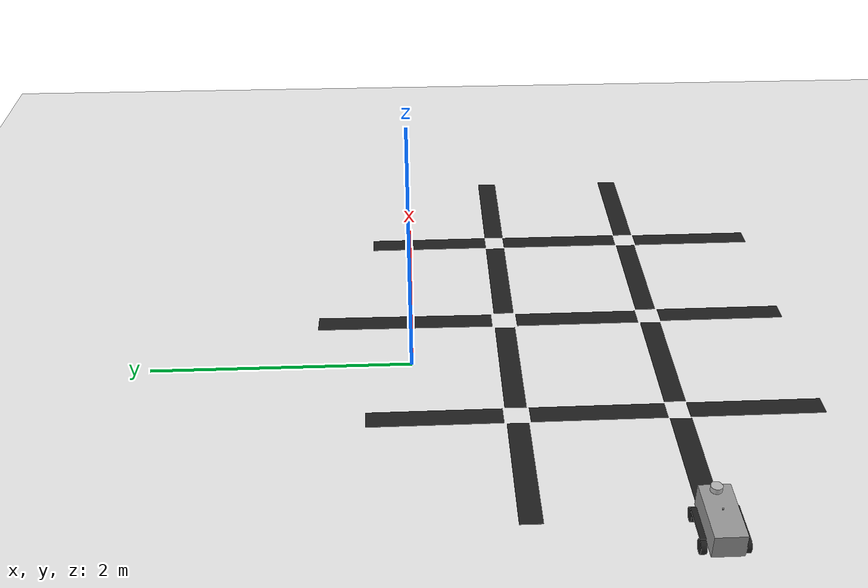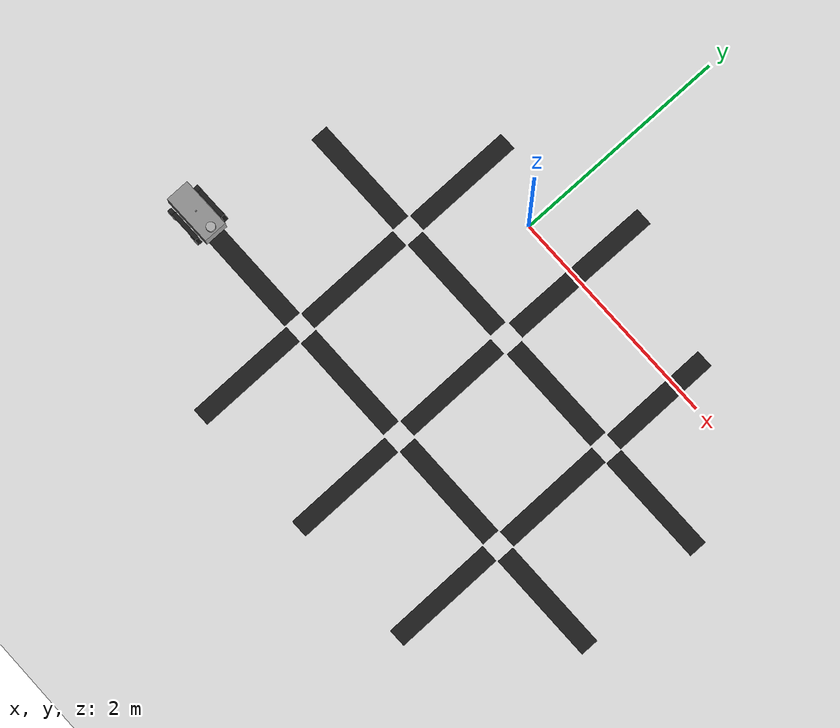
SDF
<sdf version="1.7">
 <world name="default">
  <light name="sun" type="directional">
   <pose>0 0 10 0 -0 0</pose>
   <diffuse>0.8 0.8 0.8 1</diffuse>
   <specular>0.2 0.2 0.2 1</specular>
   <attenuation>
    <range>1000</range>
    <constant>0.9</constant>
    <linear>0.01</linear>
    <quadratic>0.001</quadratic>
   </attenuation>
   <direction>-0.5 0.1 -0.9</direction>
   <spot><inner_angle>0</inner_angle><outer_angle>0</outer_angle><falloff>0</falloff></spot>
  </light>
  <model name="ground_plane">
   <static>1</static>
   <link name="link">
    <collision name="collision">
     <geometry><plane><normal>0 0 1</normal><size>100 100</size></plane></geometry>
     <surface>
      <contact><collide_bitmask>65535</collide_bitmask></contact>
      <friction><ode><mu>100</mu><mu2>50</mu2></ode></friction>
     </surface>
    </collision>
    <visual name="visual">
     <cast_shadows>0</cast_shadows>
     <geometry><plane><normal>0 0 1</normal><size>100 100</size></plane></geometry>
     <material>
      <script><uri>file://media/materials/scripts/gazebo.material</uri><name>Gazebo/White</name></script>
     </material>
    </visual>
   </link>
  </model>
  <model name="tankbot0">
   <pose>-1.86194 -1.93796 0 -3e-06 1e-05 0.00632</pose>
   <frame name="tankbot::__model__" attached_to="tankbot::chassis">
    <pose relative_to="__model__">0 0 0 0 -0 0</pose>
   </frame>
   <link name="tankbot::chassis">
    <pose relative_to="tankbot::__model__">0 0 0.135 0 -0 0</pose>
    <inertial>
     <pose>0.0465 0 0 0 -0 0</pose>
     <mass>2</mass>
     <inertia>
      <ixx>0.0125927</ixx>
      <iyy>0.0408542</iyy>
      <izz>0.0438135</izz>
      <ixy>0</ixy>
      <ixz>0</ixz>
      <iyz>0</iyz>
     </inertia>
    </inertial>
    <collision name="collision"><geometry><box><size>0.465 0.216 0.17</size></box></geometry></collision>
    <visual name="visual">
     <geometry><box><size>0.465 0.216 0.17</size></box></geometry>
     <material>
      <script><uri>file://media/materials/scripts/gazebo.material</uri><name>Gazebo/Grey</name></script>
     </material>
    </visual>
   </link>
   <link name="tankbot::wheel_fl">
    <pose relative_to="tankbot::__model__">0.1395 0.142 0.05 -1.5708 -0.087266 0</pose>
    <inertial>
     <mass>0.25</mass>
     <inertia>
      <ixx>0.000189583</ixx>
      <iyy>0.000189583</iyy>
      <izz>0.0003125</izz>
      <ixy>0</ixy>
      <ixz>0</ixz>
      <iyz>0</iyz>
     </inertia>
    </inertial>
    <collision name="collision">
     <geometry><cylinder><radius>0.05</radius><length>0.04</length></cylinder></geometry>
    </collision>
    <visual name="tankbot::wheel_fl">
     <geometry><cylinder><radius>0.05</radius><length>0.04</length></cylinder></geometry>
     <material>
      <script><uri>file://media/materials/scripts/gazebo.material</uri><name>Gazebo/Black</name></script>
     </material>
    </visual>
   </link>
   <joint name="tankbot::wheel_fl_drive" type="revolute">
    <parent>tankbot::chassis</parent>
    <child>tankbot::wheel_fl</child>
    <axis>
     <xyz>0 0 1</xyz>
     <limit><lower>-1e+16</lower><upper>1e+16</upper></limit>
     <dynamics><spring_reference>0</spring_reference><spring_stiffness>0</spring_stiffness></dynamics>
    </axis>
   </joint>
   <link name="tankbot::chain_l_up">
    <pose relative_to="tankbot::__model__">0.0098 0.14 0.1 0 -0 0</pose>
    <gravity>0</gravity>
    <collision name="collision"><geometry><box><size>0.28 0.04 0.01</size></box></geometry></collision>
    <visual name="visual">
     <geometry><box><size>0.28 0.04 0.01</size></box></geometry>
     <material>
      <script><uri>file://media/materials/scripts/gazebo.material</uri><name>Gazebo/Black</name></script>
     </material>
    </visual>
    <inertial>
     <inertia><ixx>1</ixx><ixy>0</ixy><ixz>0</ixz><iyy>1</iyy><iyz>0</iyz><izz>1</izz></inertia>
     <mass>1</mass>
    </inertial>
   </link>
   <link name="tankbot::chain_r_up">
    <pose relative_to="tankbot::__model__">0.0098 -0.14 0.1 0 -0 0</pose>
    <gravity>0</gravity>
    <collision name="collision"><geometry><box><size>0.28 0.04 0.01</size></box></geometry></collision>
    <visual name="visual">
     <geometry><box><size>0.28 0.04 0.01</size></box></geometry>
     <material>
      <script><uri>file://media/materials/scripts/gazebo.material</uri><name>Gazebo/Black</name></script>
     </material>
    </visual>
    <inertial>
     <inertia><ixx>1</ixx><ixy>0</ixy><ixz>0</ixz><iyy>1</iyy><iyz>0</iyz><izz>1</izz></inertia>
     <mass>1</mass>
    </inertial>
   </link>
   <joint name="tankbot::chain_up_joint" type="revolute">
    <parent>tankbot::chassis</parent>
    <child>tankbot::chain_r_up</child>
   </joint>
   <joint name="tankbot::chain_up_2_joint" type="revolute">
    <parent>tankbot::chassis</parent>
    <child>tankbot::chain_l_up</child>
   </joint>
   <link name="tankbot::wheel_fr">
    <pose relative_to="tankbot::__model__">0.1395 -0.142 0.05 -1.5708 -0.087266 0</pose>
    <inertial>
     <mass>0.25</mass>
     <inertia>
      <ixx>0.000189583</ixx>
      <iyy>0.000189583</iyy>
      <izz>0.0003125</izz>
      <ixy>0</ixy>
      <ixz>0</ixz>
      <iyz>0</iyz>
     </inertia>
    </inertial>
    <collision name="collision">
     <geometry><cylinder><radius>0.05</radius><length>0.04</length></cylinder></geometry>
    </collision>
    <visual name="visual">
     <geometry><cylinder><radius>0.05</radius><length>0.04</length></cylinder></geometry>
     <material>
      <script><uri>file://media/materials/scripts/gazebo.material</uri><name>Gazebo/Black</name></script>
     </material>
    </visual>
   </link>
   <joint name="tankbot::wheel_fr_drive" type="revolute">
    <parent>tankbot::chassis</parent>
    <child>tankbot::wheel_fr</child>
    <axis>
     <xyz>0 0 1</xyz>
     <limit><lower>-1e+16</lower><upper>1e+16</upper></limit>
     <dynamics><spring_reference>0</spring_reference><spring_stiffness>0</spring_stiffness></dynamics>
    </axis>
   </joint>
   <link name="tankbot::wheel_rl">
    <pose relative_to="tankbot::__model__">-0.1395 0.142 0.05 -1.5708 0 0</pose>
    <inertial>
     <mass>0.25</mass>
     <inertia>
      <ixx>0.000189583</ixx>
      <iyy>0.000189583</iyy>
      <izz>0.0003125</izz>
      <ixy>0</ixy>
      <ixz>0</ixz>
      <iyz>0</iyz>
     </inertia>
    </inertial>
    <collision name="collision">
     <geometry><cylinder><radius>0.05</radius><length>0.04</length></cylinder></geometry>
    </collision>
    <visual name="visual">
     <geometry><cylinder><radius>0.05</radius><length>0.04</length></cylinder></geometry>
     <material>
      <script><uri>file://media/materials/scripts/gazebo.material</uri><name>Gazebo/Black</name></script>
     </material>
    </visual>
   </link>
   <joint name="tankbot::wheel_rl_drive" type="revolute">
    <parent>tankbot::chassis</parent>
    <child>tankbot::wheel_rl</child>
    <axis>
     <xyz>0 0 1</xyz>
     <limit><lower>-1e+16</lower><upper>1e+16</upper></limit>
     <dynamics><spring_reference>0</spring_reference><spring_stiffness>0</spring_stiffness></dynamics>
    </axis>
   </joint>
   <link name="tankbot::wheel_rr">
    <pose relative_to="tankbot::__model__">-0.1395 -0.142 0.05 -1.5708 0 0</pose>
    <inertial>
     <mass>0.25</mass>
     <inertia>
      <ixx>0.000189583</ixx>
      <iyy>0.000189583</iyy>
      <izz>0.0003125</izz>
      <ixy>0</ixy>
      <ixz>0</ixz>
      <iyz>0</iyz>
     </inertia>
    </inertial>
    <collision name="collision">
     <geometry><cylinder><radius>0.05</radius><length>0.04</length></cylinder></geometry>
    </collision>
    <visual name="visual">
     <geometry><cylinder><radius>0.05</radius><length>0.04</length></cylinder></geometry>
     <material>
      <script><uri>file://media/materials/scripts/gazebo.material</uri><name>Gazebo/Black</name></script>
     </material>
    </visual>
   </link>
   <joint name="tankbot::wheel_rr_drive" type="revolute">
    <parent>tankbot::chassis</parent>
    <child>tankbot::wheel_rr</child>
    <axis>
     <xyz>0 0 1</xyz>
     <limit><lower>-1e+16</lower><upper>1e+16</upper></limit>
     <dynamics><spring_reference>0</spring_reference><spring_stiffness>0</spring_stiffness></dynamics>
    </axis>
   </joint>
   <frame name="tankbot::ultrasonic_sensor::__model__" attached_to="tankbot::ultrasonic_sensor::link">
    <pose relative_to="tankbot::__model__">0.18 0 0.24 0 -0 0</pose>
   </frame>
   <link name="tankbot::ultrasonic_sensor::link">
    <inertial>
     <mass>0.1</mass>
     <inertia><ixx>1</ixx><ixy>0</ixy><ixz>0</ixz><iyy>1</iyy><iyz>0</iyz><izz>1</izz></inertia>
    </inertial>
    <visual name="visual">
     <geometry><cylinder><radius>0.04</radius><length>0.04</length></cylinder></geometry>
    </visual>
    <collision name="collision-base">
     <pose>0 0 -0.0145 0 -0 0</pose>
     <geometry><box><size>0.05 0.05 0.041</size></box></geometry>
    </collision>
    <collision name="collision-top">
     <pose>0 0 0.0205 0 -0 0</pose>
     <geometry><cylinder><radius>0.021</radius><length>0.029</length></cylinder></geometry>
    </collision>
    <sensor name="sonar" type="sonar">
     <pose>0.04 0 0 0 1.5 3.14</pose>
     <sonar><min>0</min><max>3</max><radius>0.3</radius></sonar>
     <plugin name="sonar" filename="libSonarPlugin.so"/>
     <always_on>1</always_on>
     <update_rate>30</update_rate>
     <visualize>1</visualize>
    </sensor>
    <pose relative_to="tankbot::ultrasonic_sensor::__model__">0 0 0 0 -0 0</pose>
   </link>
   <joint name="tankbot::sonar_joint" type="fixed">
    <child>tankbot::ultrasonic_sensor::link</child>
    <parent>tankbot::chassis</parent>
   </joint>
   <frame name="tankbot::camera_sensor::__model__" attached_to="tankbot::camera_sensor::link">
    <pose relative_to="tankbot::__model__">0.2 0 0.04 0 1.57 0</pose>
   </frame>
   <link name="tankbot::camera_sensor::link">
    <inertial>
     <mass>0.1</mass>
     <inertia><ixx>1</ixx><ixy>0</ixy><ixz>0</ixz><iyy>1</iyy><iyz>0</iyz><izz>1</izz></inertia>
    </inertial>
    <visual name="visual">
     <geometry><box><size>0.01 0.07 0.04</size></box></geometry>
     <material>
      <script><uri>file://media/materials/scripts/gazebo.material</uri><name>Gazebo/Red</name></script>
     </material>
    </visual>
    <collision name="collision">
     <pose>0 0 -0.0145 0 -0 0</pose>
     <geometry><box><size>0.01 0.07 0.04</size></box></geometry>
    </collision>
    <sensor name="camera" type="camera">
     <camera>
      <horizontal_fov>1.39626</horizontal_fov>
      <image><width>2</width><height>2</height></image>
      <clip><near>0.02</near><far>300</far></clip>
     </camera>
     <always_on>1</always_on>
     <update_rate>10</update_rate>
     <visualize>1</visualize>
     <plugin name="camera_controller" filename="libCameraPlugin.so"/>
    </sensor>
    <pose relative_to="tankbot::camera_sensor::__model__">0 0 0 0 -0 0</pose>
   </link>
   <frame name="tankbot::microphone_sensor::__model__" attached_to="tankbot::microphone_sensor::link">
    <pose relative_to="tankbot::__model__">0 0 0.23 0 -0 0</pose>
   </frame>
   <link name="tankbot::microphone_sensor::link">
    <inertial>
     <mass>0.1</mass>
     <inertia><ixx>1</ixx><ixy>0</ixy><ixz>0</ixz><iyy>1</iyy><iyz>0</iyz><izz>1</izz></inertia>
    </inertial>
    <visual name="visual">
     <geometry><box><size>0.01 0.01 0.01</size></box></geometry>
     <material>
      <script><uri>file://media/materials/scripts/gazebo.material</uri><name>Gazebo/Grey</name></script>
     </material>
    </visual>
    <collision name="collision"><geometry><box><size>0.01 0.01 0.01</size></box></geometry></collision>
    <pose relative_to="tankbot::microphone_sensor::__model__">0 0 0 0 -0 0</pose>
   </link>
   <plugin name="microphone_controller" filename="libmicrophone_control_plugin.so"/>
   <joint name="tankbot::camera_joint" type="fixed">
    <child>tankbot::camera_sensor::link</child>
    <parent>tankbot::chassis</parent>
   </joint>
   <plugin name="tankbot_control" filename="libtank_control_plugin.so"/>
   <plugin name="tankbot_control" filename="libtank_control_plugin.so"/>
  </model>
  <gravity>0 0 -9.8</gravity>
  <magnetic_field>6e-06 2.3e-05 -4.2e-05</magnetic_field>
  <atmosphere type="adiabatic"/>
  <physics type="ode">
   <max_step_size>0.001</max_step_size>
   <real_time_factor>1</real_time_factor>
   <real_time_update_rate>1000</real_time_update_rate>
  </physics>
  <scene><ambient>0.4 0.4 0.4 1</ambient><background>0.7 0.7 0.7 1</background><shadows>1</shadows></scene>
  <spherical_coordinates>
   <surface_model>EARTH_WGS84</surface_model>
   <latitude_deg>0</latitude_deg>
   <longitude_deg>0</longitude_deg>
   <elevation>0</elevation>
   <heading_deg>0</heading_deg>
  </spherical_coordinates>
  <model name="unit_box_clone_0_clone_clone_0">
   <link name="link">
    <inertial>
     <mass>1</mass>
     <inertia>
      <ixx>0.166667</ixx>
      <ixy>0</ixy>
      <ixz>0</ixz>
      <iyy>0.166667</iyy>
      <iyz>0</iyz>
      <izz>0.166667</izz>
     </inertia>
    </inertial>
    <visual name="visual">
     <geometry><box><size>1 0.160776 0.000937</size></box></geometry>
     <material>
      <script><name>Gazebo/Black</name><uri>file://media/materials/scripts/gazebo.material</uri></script>
      <shader type="pixel"><normal_map>__default__</normal_map></shader>
      <ambient>0 0 0 1</ambient>
      <diffuse>0 0 0 1</diffuse>
      <specular>0.1 0.1 0.1 1</specular>
      <emissive>0 0 0 1</emissive>
     </material>
    </visual>
    <collision name="collision">
     <geometry><box><size>1 0.160776 0.000937</size></box></geometry>
     <surface>
      <friction>
       <ode><mu>1</mu><mu2>1</mu2><fdir1>0 0 0</fdir1><slip1>0</slip1><slip2>0</slip2></ode>
       <torsional>
        <coefficient>1</coefficient>
        <patch_radius>0</patch_radius>
        <surface_radius>0</surface_radius>
        <use_patch_radius>1</use_patch_radius>
        <ode><slip>0</slip></ode>
       </torsional>
      </friction>
      <bounce><restitution_coefficient>0</restitution_coefficient><threshold>1e+06</threshold></bounce>
      <contact>
       <collide_without_contact>0</collide_without_contact>
       <collide_without_contact_bitmask>1</collide_without_contact_bitmask>
       <collide_bitmask>1</collide_bitmask>
       <ode>
        <soft_cfm>0</soft_cfm>
        <soft_erp>0.2</soft_erp>
        <kp>1e+13</kp>
        <kd>1</kd>
        <max_vel>0.01</max_vel>
        <min_depth>0</min_depth>
       </ode>
       <bullet>
        <split_impulse>1</split_impulse>
        <split_impulse_penetration_threshold>-0.01</split_impulse_penetration_threshold>
        <soft_cfm>0</soft_cfm>
        <soft_erp>0.2</soft_erp>
        <kp>1e+13</kp>
        <kd>1</kd>
       </bullet>
      </contact>
     </surface>
    </collision>
   </link>
   <static>0</static>
   <pose>-0.04529 -0.750121 0.000469 0 0 -3.7e-05</pose>
  </model>
  <model name="unit_box_clone_0_clone_clone_clone_clone_clone_clone_clone_0_clone">
   <link name="link">
    <inertial>
     <mass>1</mass>
     <inertia>
      <ixx>0.166667</ixx>
      <ixy>0</ixy>
      <ixz>0</ixz>
      <iyy>0.166667</iyy>
      <iyz>0</iyz>
      <izz>0.166667</izz>
     </inertia>
    </inertial>
    <visual name="visual">
     <geometry><box><size>1.3997 0.161571 0.000937</size></box></geometry>
     <material>
      <script><name>Gazebo/Black</name><uri>file://media/materials/scripts/gazebo.material</uri></script>
      <shader type="pixel"><normal_map>__default__</normal_map></shader>
      <ambient>0 0 0 1</ambient>
      <diffuse>0 0 0 1</diffuse>
      <specular>0.1 0.1 0.1 1</specular>
      <emissive>0 0 0 1</emissive>
     </material>
    </visual>
    <collision name="collision">
     <geometry><box><size>1.3997 0.161571 0.000937</size></box></geometry>
     <surface>
      <friction>
       <ode><mu>1</mu><mu2>1</mu2><fdir1>0 0 0</fdir1><slip1>0</slip1><slip2>0</slip2></ode>
       <torsional>
        <coefficient>1</coefficient>
        <patch_radius>0</patch_radius>
        <surface_radius>0</surface_radius>
        <use_patch_radius>1</use_patch_radius>
        <ode><slip>0</slip></ode>
       </torsional>
      </friction>
      <bounce><restitution_coefficient>0</restitution_coefficient><threshold>1e+06</threshold></bounce>
      <contact>
       <collide_without_contact>0</collide_without_contact>
       <collide_without_contact_bitmask>1</collide_without_contact_bitmask>
       <collide_bitmask>1</collide_bitmask>
       <ode>
        <soft_cfm>0</soft_cfm>
        <soft_erp>0.2</soft_erp>
        <kp>1e+13</kp>
        <kd>1</kd>
        <max_vel>0.01</max_vel>
        <min_depth>0</min_depth>
       </ode>
       <bullet>
        <split_impulse>1</split_impulse>
        <split_impulse_penetration_threshold>-0.01</split_impulse_penetration_threshold>
        <soft_cfm>0</soft_cfm>
        <soft_erp>0.2</soft_erp>
        <kp>1e+13</kp>
        <kd>1</kd>
       </bullet>
      </contact>
     </surface>
    </collision>
   </link>
   <static>0</static>
   <pose>0.561441 0.050522 0.000455 0 1.9e-05 -1.57395</pose>
  </model>
  <model name="unit_box_clone_0_clone_clone_0_clone">
   <link name="link">
    <inertial>
     <mass>1</mass>
     <inertia>
      <ixx>0.166667</ixx>
      <ixy>0</ixy>
      <ixz>0</ixz>
      <iyy>0.166667</iyy>
      <iyz>0</iyz>
      <izz>0.166667</izz>
     </inertia>
    </inertial>
    <visual name="visual">
     <geometry><box><size>1 0.160776 0.000937</size></box></geometry>
     <material>
      <script><name>Gazebo/Black</name><uri>file://media/materials/scripts/gazebo.material</uri></script>
      <shader type="pixel"><normal_map>__default__</normal_map></shader>
      <ambient>0 0 0 1</ambient>
      <diffuse>0 0 0 1</diffuse>
      <specular>0.1 0.1 0.1 1</specular>
      <emissive>0 0 0 1</emissive>
     </material>
    </visual>
    <collision name="collision">
     <geometry><box><size>1 0.160776 0.000937</size></box></geometry>
     <surface>
      <friction>
       <ode><mu>1</mu><mu2>1</mu2><fdir1>0 0 0</fdir1><slip1>0</slip1><slip2>0</slip2></ode>
       <torsional>
        <coefficient>1</coefficient>
        <patch_radius>0</patch_radius>
        <surface_radius>0</surface_radius>
        <use_patch_radius>1</use_patch_radius>
        <ode><slip>0</slip></ode>
       </torsional>
      </friction>
      <bounce><restitution_coefficient>0</restitution_coefficient><threshold>1e+06</threshold></bounce>
      <contact>
       <collide_without_contact>0</collide_without_contact>
       <collide_without_contact_bitmask>1</collide_without_contact_bitmask>
       <collide_bitmask>1</collide_bitmask>
       <ode>
        <soft_cfm>0</soft_cfm>
        <soft_erp>0.2</soft_erp>
        <kp>1e+13</kp>
        <kd>1</kd>
        <max_vel>0.01</max_vel>
        <min_depth>0</min_depth>
       </ode>
       <bullet>
        <split_impulse>1</split_impulse>
        <split_impulse_penetration_threshold>-0.01</split_impulse_penetration_threshold>
        <soft_cfm>0</soft_cfm>
        <soft_erp>0.2</soft_erp>
        <kp>1e+13</kp>
        <kd>1</kd>
       </bullet>
      </contact>
     </surface>
    </collision>
   </link>
   <static>0</static>
   <pose>1.1591 -0.754913 0.000469 -0 -0 -3.7e-05</pose>
  </model>
  <model name="unit_box_clone_0_clone_clone_0_clone_clone">
   <link name="link">
    <inertial>
     <mass>1</mass>
     <inertia>
      <ixx>0.166667</ixx>
      <ixy>0</ixy>
      <ixz>0</ixz>
      <iyy>0.166667</iyy>
      <iyz>0</iyz>
      <izz>0.166667</izz>
     </inertia>
    </inertial>
    <visual name="visual">
     <geometry><box><size>0.983697 0.160776 0.000937</size></box></geometry>
     <material>
      <script><name>Gazebo/Black</name><uri>file://media/materials/scripts/gazebo.material</uri></script>
      <shader type="pixel"><normal_map>__default__</normal_map></shader>
      <ambient>0 0 0 1</ambient>
      <diffuse>0 0 0 1</diffuse>
      <specular>0.1 0.1 0.1 1</specular>
      <emissive>0 0 0 1</emissive>
     </material>
    </visual>
    <collision name="collision">
     <geometry><box><size>0.983697 0.160776 0.000937</size></box></geometry>
     <surface>
      <friction>
       <ode><mu>1</mu><mu2>1</mu2><fdir1>0 0 0</fdir1><slip1>0</slip1><slip2>0</slip2></ode>
       <torsional>
        <coefficient>1</coefficient>
        <patch_radius>0</patch_radius>
        <surface_radius>0</surface_radius>
        <use_patch_radius>1</use_patch_radius>
        <ode><slip>0</slip></ode>
       </torsional>
      </friction>
      <bounce><restitution_coefficient>0</restitution_coefficient><threshold>1e+06</threshold></bounce>
      <contact>
       <collide_without_contact>0</collide_without_contact>
       <collide_without_contact_bitmask>1</collide_without_contact_bitmask>
       <collide_bitmask>1</collide_bitmask>
       <ode>
        <soft_cfm>0</soft_cfm>
        <soft_erp>0.2</soft_erp>
        <kp>1e+13</kp>
        <kd>1</kd>
        <max_vel>0.01</max_vel>
        <min_depth>0</min_depth>
       </ode>
       <bullet>
        <split_impulse>1</split_impulse>
        <split_impulse_penetration_threshold>-0.01</split_impulse_penetration_threshold>
        <soft_cfm>0</soft_cfm>
        <soft_erp>0.2</soft_erp>
        <kp>1e+13</kp>
        <kd>1</kd>
       </bullet>
      </contact>
     </surface>
    </collision>
   </link>
   <static>0</static>
   <pose>0.563533 -1.34232 0.000463 -2e-06 -1.2e-05 -1.56214</pose>
  </model>
  <model name="unit_box_clone_0_clone_clone_0_clone_clone_clone">
   <link name="link">
    <inertial>
     <mass>1</mass>
     <inertia>
      <ixx>0.166667</ixx>
      <ixy>0</ixy>
      <ixz>0</ixz>
      <iyy>0.166667</iyy>
      <iyz>0</iyz>
      <izz>0.166667</izz>
     </inertia>
    </inertial>
    <visual name="visual">
     <geometry><box><size>1 0.160776 0.000937</size></box></geometry>
     <material>
      <script><name>Gazebo/Black</name><uri>file://media/materials/scripts/gazebo.material</uri></script>
      <shader type="pixel"><normal_map>__default__</normal_map></shader>
      <ambient>0 0 0 1</ambient>
      <diffuse>0 0 0 1</diffuse>
      <specular>0.1 0.1 0.1 1</specular>
      <emissive>0 0 0 1</emissive>
     </material>
    </visual>
    <collision name="collision">
     <geometry><box><size>1 0.160776 0.000937</size></box></geometry>
     <surface>
      <friction>
       <ode><mu>1</mu><mu2>1</mu2><fdir1>0 0 0</fdir1><slip1>0</slip1><slip2>0</slip2></ode>
       <torsional>
        <coefficient>1</coefficient>
        <patch_radius>0</patch_radius>
        <surface_radius>0</surface_radius>
        <use_patch_radius>1</use_patch_radius>
        <ode><slip>0</slip></ode>
       </torsional>
      </friction>
      <bounce><restitution_coefficient>0</restitution_coefficient><threshold>1e+06</threshold></bounce>
      <contact>
       <collide_without_contact>0</collide_without_contact>
       <collide_without_contact_bitmask>1</collide_without_contact_bitmask>
       <collide_bitmask>1</collide_bitmask>
       <ode>
        <soft_cfm>0</soft_cfm>
        <soft_erp>0.2</soft_erp>
        <kp>1e+13</kp>
        <kd>1</kd>
        <max_vel>0.01</max_vel>
        <min_depth>0</min_depth>
       </ode>
       <bullet>
        <split_impulse>1</split_impulse>
        <split_impulse_penetration_threshold>-0.01</split_impulse_penetration_threshold>
        <soft_cfm>0</soft_cfm>
        <soft_erp>0.2</soft_erp>
        <kp>1e+13</kp>
        <kd>1</kd>
       </bullet>
      </contact>
     </surface>
    </collision>
   </link>
   <static>0</static>
   <pose>1.76194 -1.33679 0.000466 0 5e-06 -1.56226</pose>
  </model>
  <model name="unit_box_clone_0_clone_clone_0_clone_clone_0">
   <link name="link">
    <inertial>
     <mass>1</mass>
     <inertia>
      <ixx>0.166667</ixx>
      <ixy>0</ixy>
      <ixz>0</ixz>
      <iyy>0.166667</iyy>
      <iyz>0</iyz>
      <izz>0.166667</izz>
     </inertia>
    </inertial>
    <visual name="visual">
     <geometry><box><size>1 0.160776 0.000937</size></box></geometry>
     <material>
      <script><name>Gazebo/Black</name><uri>file://media/materials/scripts/gazebo.material</uri></script>
      <shader type="pixel"><normal_map>__default__</normal_map></shader>
      <ambient>0 0 0 1</ambient>
      <diffuse>0 0 0 1</diffuse>
      <specular>0.1 0.1 0.1 1</specular>
      <emissive>0 0 0 1</emissive>
     </material>
    </visual>
    <collision name="collision">
     <geometry><box><size>1 0.160776 0.000937</size></box></geometry>
     <surface>
      <friction>
       <ode><mu>1</mu><mu2>1</mu2><fdir1>0 0 0</fdir1><slip1>0</slip1><slip2>0</slip2></ode>
       <torsional>
        <coefficient>1</coefficient>
        <patch_radius>0</patch_radius>
        <surface_radius>0</surface_radius>
        <use_patch_radius>1</use_patch_radius>
        <ode><slip>0</slip></ode>
       </torsional>
      </friction>
      <bounce><restitution_coefficient>0</restitution_coefficient><threshold>1e+06</threshold></bounce>
      <contact>
       <collide_without_contact>0</collide_without_contact>
       <collide_without_contact_bitmask>1</collide_without_contact_bitmask>
       <collide_bitmask>1</collide_bitmask>
       <ode>
        <soft_cfm>0</soft_cfm>
        <soft_erp>0.2</soft_erp>
        <kp>1e+13</kp>
        <kd>1</kd>
        <max_vel>0.01</max_vel>
        <min_depth>0</min_depth>
       </ode>
       <bullet>
        <split_impulse>1</split_impulse>
        <split_impulse_penetration_threshold>-0.01</split_impulse_penetration_threshold>
        <soft_cfm>0</soft_cfm>
        <soft_erp>0.2</soft_erp>
        <kp>1e+13</kp>
        <kd>1</kd>
       </bullet>
      </contact>
     </surface>
    </collision>
   </link>
   <static>0</static>
   <pose>2.3499 -0.756127 0.000466 0 -5e-06 -3.4e-05</pose>
  </model>
  <model name="unit_box_clone_0_clone_clone_0_clone_clone_clone_0">
   <link name="link">
    <inertial>
     <mass>1</mass>
     <inertia>
      <ixx>0.166667</ixx>
      <ixy>0</ixy>
      <ixz>0</ixz>
      <iyy>0.166667</iyy>
      <iyz>0</iyz>
      <izz>0.166667</izz>
     </inertia>
    </inertial>
    <visual name="visual">
     <geometry><box><size>1 0.160776 0.000937</size></box></geometry>
     <material>
      <script><name>Gazebo/Black</name><uri>file://media/materials/scripts/gazebo.material</uri></script>
      <shader type="pixel"><normal_map>__default__</normal_map></shader>
      <ambient>0 0 0 1</ambient>
      <diffuse>0 0 0 1</diffuse>
      <specular>0.1 0.1 0.1 1</specular>
      <emissive>0 0 0 1</emissive>
     </material>
    </visual>
    <collision name="collision">
     <geometry><box><size>1 0.160776 0.000937</size></box></geometry>
     <surface>
      <friction>
       <ode><mu>1</mu><mu2>1</mu2><fdir1>0 0 0</fdir1><slip1>0</slip1><slip2>0</slip2></ode>
       <torsional>
        <coefficient>1</coefficient>
        <patch_radius>0</patch_radius>
        <surface_radius>0</surface_radius>
        <use_patch_radius>1</use_patch_radius>
        <ode><slip>0</slip></ode>
       </torsional>
      </friction>
      <bounce><restitution_coefficient>0</restitution_coefficient><threshold>1e+06</threshold></bounce>
      <contact>
       <collide_without_contact>0</collide_without_contact>
       <collide_without_contact_bitmask>1</collide_without_contact_bitmask>
       <collide_bitmask>1</collide_bitmask>
       <ode>
        <soft_cfm>0</soft_cfm>
        <soft_erp>0.2</soft_erp>
        <kp>1e+13</kp>
        <kd>1</kd>
        <max_vel>0.01</max_vel>
        <min_depth>0</min_depth>
       </ode>
       <bullet>
        <split_impulse>1</split_impulse>
        <split_impulse_penetration_threshold>-0.01</split_impulse_penetration_threshold>
        <soft_cfm>0</soft_cfm>
        <soft_erp>0.2</soft_erp>
        <kp>1e+13</kp>
        <kd>1</kd>
       </bullet>
      </contact>
     </surface>
    </collision>
   </link>
   <static>0</static>
   <pose>1.75703 -0.173188 0.000466 0 -5e-06 -1.56216</pose>
  </model>
  <model name="unit_box_clone_0_clone_clone_0_clone_0">
   <link name="link">
    <inertial>
     <mass>1</mass>
     <inertia>
      <ixx>0.166667</ixx>
      <ixy>0</ixy>
      <ixz>0</ixz>
      <iyy>0.166667</iyy>
      <iyz>0</iyz>
      <izz>0.166667</izz>
     </inertia>
    </inertial>
    <visual name="visual">
     <geometry><box><size>1 0.160776 0.000937</size></box></geometry>
     <material>
      <script><name>Gazebo/Black</name><uri>file://media/materials/scripts/gazebo.material</uri></script>
      <shader type="pixel"><normal_map>__default__</normal_map></shader>
      <ambient>0 0 0 1</ambient>
      <diffuse>0 0 0 1</diffuse>
      <specular>0.1 0.1 0.1 1</specular>
      <emissive>0 0 0 1</emissive>
     </material>
    </visual>
    <collision name="collision">
     <geometry><box><size>1 0.160776 0.000937</size></box></geometry>
     <surface>
      <friction>
       <ode><mu>1</mu><mu2>1</mu2><fdir1>0 0 0</fdir1><slip1>0</slip1><slip2>0</slip2></ode>
       <torsional>
        <coefficient>1</coefficient>
        <patch_radius>0</patch_radius>
        <surface_radius>0</surface_radius>
        <use_patch_radius>1</use_patch_radius>
        <ode><slip>0</slip></ode>
       </torsional>
      </friction>
      <bounce><restitution_coefficient>0</restitution_coefficient><threshold>1e+06</threshold></bounce>
      <contact>
       <collide_without_contact>0</collide_without_contact>
       <collide_without_contact_bitmask>1</collide_without_contact_bitmask>
       <collide_bitmask>1</collide_bitmask>
       <ode>
        <soft_cfm>0</soft_cfm>
        <soft_erp>0.2</soft_erp>
        <kp>1e+13</kp>
        <kd>1</kd>
        <max_vel>0.01</max_vel>
        <min_depth>0</min_depth>
       </ode>
       <bullet>
        <split_impulse>1</split_impulse>
        <split_impulse_penetration_threshold>-0.01</split_impulse_penetration_threshold>
        <soft_cfm>0</soft_cfm>
        <soft_erp>0.2</soft_erp>
        <kp>1e+13</kp>
        <kd>1</kd>
       </bullet>
      </contact>
     </surface>
    </collision>
   </link>
   <static>0</static>
   <pose>-1.22071 -0.751985 0.000469 0 0 -3.7e-05</pose>
  </model>
  <model name="unit_box_clone_0_clone_clone_0_clone_clone_clone_1">
   <link name="link">
    <inertial>
     <mass>1</mass>
     <inertia>
      <ixx>0.166667</ixx>
      <ixy>0</ixy>
      <ixz>0</ixz>
      <iyy>0.166667</iyy>
      <iyz>0</iyz>
      <izz>0.166667</izz>
     </inertia>
    </inertial>
    <visual name="visual">
     <geometry><box><size>1 0.160776 0.000937</size></box></geometry>
     <material>
      <script><name>Gazebo/Black</name><uri>file://media/materials/scripts/gazebo.material</uri></script>
      <shader type="pixel"><normal_map>__default__</normal_map></shader>
      <ambient>0 0 0 1</ambient>
      <diffuse>0 0 0 1</diffuse>
      <specular>0.1 0.1 0.1 1</specular>
      <emissive>0 0 0 1</emissive>
     </material>
    </visual>
    <collision name="collision">
     <geometry><box><size>1 0.160776 0.000937</size></box></geometry>
     <surface>
      <friction>
       <ode><mu>1</mu><mu2>1</mu2><fdir1>0 0 0</fdir1><slip1>0</slip1><slip2>0</slip2></ode>
       <torsional>
        <coefficient>1</coefficient>
        <patch_radius>0</patch_radius>
        <surface_radius>0</surface_radius>
        <use_patch_radius>1</use_patch_radius>
        <ode><slip>0</slip></ode>
       </torsional>
      </friction>
      <bounce><restitution_coefficient>0</restitution_coefficient><threshold>1e+06</threshold></bounce>
      <contact>
       <collide_without_contact>0</collide_without_contact>
       <collide_without_contact_bitmask>1</collide_without_contact_bitmask>
       <collide_bitmask>1</collide_bitmask>
       <ode>
        <soft_cfm>0</soft_cfm>
        <soft_erp>0.2</soft_erp>
        <kp>1e+13</kp>
        <kd>1</kd>
        <max_vel>0.01</max_vel>
        <min_depth>0</min_depth>
       </ode>
       <bullet>
        <split_impulse>1</split_impulse>
        <split_impulse_penetration_threshold>-0.01</split_impulse_penetration_threshold>
        <soft_cfm>0</soft_cfm>
        <soft_erp>0.2</soft_erp>
        <kp>1e+13</kp>
        <kd>1</kd>
       </bullet>
      </contact>
     </surface>
    </collision>
   </link>
   <static>0</static>
   <pose>-0.626559 -1.34724 0.000466 0 -5e-06 -1.56215</pose>
  </model>
  <model name="unit_box_clone_0_clone_clone_0_clone_clone_clone_0_clone">
   <link name="link">
    <inertial>
     <mass>1</mass>
     <inertia>
      <ixx>0.166667</ixx>
      <ixy>0</ixy>
      <ixz>0</ixz>
      <iyy>0.166667</iyy>
      <iyz>0</iyz>
      <izz>0.166667</izz>
     </inertia>
    </inertial>
    <visual name="visual">
     <geometry><box><size>1 0.160776 0.000937</size></box></geometry>
     <material>
      <script><name>Gazebo/Black</name><uri>file://media/materials/scripts/gazebo.material</uri></script>
      <shader type="pixel"><normal_map>__default__</normal_map></shader>
      <ambient>0 0 0 1</ambient>
      <diffuse>0 0 0 1</diffuse>
      <specular>0.1 0.1 0.1 1</specular>
      <emissive>0 0 0 1</emissive>
     </material>
    </visual>
    <collision name="collision">
     <geometry><box><size>1 0.160776 0.000937</size></box></geometry>
     <surface>
      <friction>
       <ode><mu>1</mu><mu2>1</mu2><fdir1>0 0 0</fdir1><slip1>0</slip1><slip2>0</slip2></ode>
       <torsional>
        <coefficient>1</coefficient>
        <patch_radius>0</patch_radius>
        <surface_radius>0</surface_radius>
        <use_patch_radius>1</use_patch_radius>
        <ode><slip>0</slip></ode>
       </torsional>
      </friction>
      <bounce><restitution_coefficient>0</restitution_coefficient><threshold>1e+06</threshold></bounce>
      <contact>
       <collide_without_contact>0</collide_without_contact>
       <collide_without_contact_bitmask>1</collide_without_contact_bitmask>
       <collide_bitmask>1</collide_bitmask>
       <ode>
        <soft_cfm>0</soft_cfm>
        <soft_erp>0.2</soft_erp>
        <kp>1e+13</kp>
        <kd>1</kd>
        <max_vel>0.01</max_vel>
        <min_depth>0</min_depth>
       </ode>
       <bullet>
        <split_impulse>1</split_impulse>
        <split_impulse_penetration_threshold>-0.01</split_impulse_penetration_threshold>
        <soft_cfm>0</soft_cfm>
        <soft_erp>0.2</soft_erp>
        <kp>1e+13</kp>
        <kd>1</kd>
       </bullet>
      </contact>
     </surface>
    </collision>
   </link>
   <static>0</static>
   <pose>-0.636774 -0.15296 0.000466 0 -5e-06 -1.56215</pose>
  </model>
  <model name="unit_box_clone_0_clone_clone_0_clone_1">
   <link name="link">
    <inertial>
     <mass>1</mass>
     <inertia>
      <ixx>0.166667</ixx>
      <ixy>0</ixy>
      <ixz>0</ixz>
      <iyy>0.166667</iyy>
      <iyz>0</iyz>
      <izz>0.166667</izz>
     </inertia>
    </inertial>
    <visual name="visual">
     <geometry><box><size>1 0.160776 0.000937</size></box></geometry>
     <material>
      <script><name>Gazebo/Black</name><uri>file://media/materials/scripts/gazebo.material</uri></script>
      <shader type="pixel"><normal_map>__default__</normal_map></shader>
      <ambient>0 0 0 1</ambient>
      <diffuse>0 0 0 1</diffuse>
      <specular>0.1 0.1 0.1 1</specular>
      <emissive>0 0 0 1</emissive>
     </material>
    </visual>
    <collision name="collision">
     <geometry><box><size>1 0.160776 0.000937</size></box></geometry>
     <surface>
      <friction>
       <ode><mu>1</mu><mu2>1</mu2><fdir1>0 0 0</fdir1><slip1>0</slip1><slip2>0</slip2></ode>
       <torsional>
        <coefficient>1</coefficient>
        <patch_radius>0</patch_radius>
        <surface_radius>0</surface_radius>
        <use_patch_radius>1</use_patch_radius>
        <ode><slip>0</slip></ode>
       </torsional>
      </friction>
      <bounce><restitution_coefficient>0</restitution_coefficient><threshold>1e+06</threshold></bounce>
      <contact>
       <collide_without_contact>0</collide_without_contact>
       <collide_without_contact_bitmask>1</collide_without_contact_bitmask>
       <collide_bitmask>1</collide_bitmask>
       <ode>
        <soft_cfm>0</soft_cfm>
        <soft_erp>0.2</soft_erp>
        <kp>1e+13</kp>
        <kd>1</kd>
        <max_vel>0.01</max_vel>
        <min_depth>0</min_depth>
       </ode>
       <bullet>
        <split_impulse>1</split_impulse>
        <split_impulse_penetration_threshold>-0.01</split_impulse_penetration_threshold>
        <soft_cfm>0</soft_cfm>
        <soft_erp>0.2</soft_erp>
        <kp>1e+13</kp>
        <kd>1</kd>
       </bullet>
      </contact>
     </surface>
    </collision>
   </link>
   <static>0</static>
   <pose>-0.021674 -1.93093 0.000466 0 -5e-06 -2.7e-05</pose>
  </model>
  <model name="unit_box_clone_0_clone_clone_0_clone_clone_1">
   <link name="link">
    <inertial>
     <mass>1</mass>
     <inertia>
      <ixx>0.166667</ixx>
      <ixy>0</ixy>
      <ixz>0</ixz>
      <iyy>0.166667</iyy>
      <iyz>0</iyz>
      <izz>0.166667</izz>
     </inertia>
    </inertial>
    <visual name="visual">
     <geometry><box><size>1 0.160776 0.000937</size></box></geometry>
     <material>
      <script><name>Gazebo/Black</name><uri>file://media/materials/scripts/gazebo.material</uri></script>
      <shader type="pixel"><normal_map>__default__</normal_map></shader>
      <ambient>0 0 0 1</ambient>
      <diffuse>0 0 0 1</diffuse>
      <specular>0.1 0.1 0.1 1</specular>
      <emissive>0 0 0 1</emissive>
     </material>
    </visual>
    <collision name="collision">
     <geometry><box><size>1 0.160776 0.000937</size></box></geometry>
     <surface>
      <friction>
       <ode><mu>1</mu><mu2>1</mu2><fdir1>0 0 0</fdir1><slip1>0</slip1><slip2>0</slip2></ode>
       <torsional>
        <coefficient>1</coefficient>
        <patch_radius>0</patch_radius>
        <surface_radius>0</surface_radius>
        <use_patch_radius>1</use_patch_radius>
        <ode><slip>0</slip></ode>
       </torsional>
      </friction>
      <bounce><restitution_coefficient>0</restitution_coefficient><threshold>1e+06</threshold></bounce>
      <contact>
       <collide_without_contact>0</collide_without_contact>
       <collide_without_contact_bitmask>1</collide_without_contact_bitmask>
       <collide_bitmask>1</collide_bitmask>
       <ode>
        <soft_cfm>0</soft_cfm>
        <soft_erp>0.2</soft_erp>
        <kp>1e+13</kp>
        <kd>1</kd>
        <max_vel>0.01</max_vel>
        <min_depth>0</min_depth>
       </ode>
       <bullet>
        <split_impulse>1</split_impulse>
        <split_impulse_penetration_threshold>-0.01</split_impulse_penetration_threshold>
        <soft_cfm>0</soft_cfm>
        <soft_erp>0.2</soft_erp>
        <kp>1e+13</kp>
        <kd>1</kd>
       </bullet>
      </contact>
     </surface>
    </collision>
   </link>
   <static>0</static>
   <pose>1.16882 -1.92553 0.000466 0 5e-06 -2.8e-05</pose>
  </model>
  <model name="unit_box_clone_0_clone_clone_0_clone_clone_0_clone">
   <link name="link">
    <inertial>
     <mass>1</mass>
     <inertia>
      <ixx>0.166667</ixx>
      <ixy>0</ixy>
      <ixz>0</ixz>
      <iyy>0.166667</iyy>
      <iyz>0</iyz>
      <izz>0.166667</izz>
     </inertia>
    </inertial>
    <visual name="visual">
     <geometry><box><size>1 0.160776 0.000937</size></box></geometry>
     <material>
      <script><name>Gazebo/Black</name><uri>file://media/materials/scripts/gazebo.material</uri></script>
      <shader type="pixel"><normal_map>__default__</normal_map></shader>
      <ambient>0 0 0 1</ambient>
      <diffuse>0 0 0 1</diffuse>
      <specular>0.1 0.1 0.1 1</specular>
      <emissive>0 0 0 1</emissive>
     </material>
    </visual>
    <collision name="collision">
     <geometry><box><size>1 0.160776 0.000937</size></box></geometry>
     <surface>
      <friction>
       <ode><mu>1</mu><mu2>1</mu2><fdir1>0 0 0</fdir1><slip1>0</slip1><slip2>0</slip2></ode>
       <torsional>
        <coefficient>1</coefficient>
        <patch_radius>0</patch_radius>
        <surface_radius>0</surface_radius>
        <use_patch_radius>1</use_patch_radius>
        <ode><slip>0</slip></ode>
       </torsional>
      </friction>
      <bounce><restitution_coefficient>0</restitution_coefficient><threshold>1e+06</threshold></bounce>
      <contact>
       <collide_without_contact>0</collide_without_contact>
       <collide_without_contact_bitmask>1</collide_without_contact_bitmask>
       <collide_bitmask>1</collide_bitmask>
       <ode>
        <soft_cfm>0</soft_cfm>
        <soft_erp>0.2</soft_erp>
        <kp>1e+13</kp>
        <kd>1</kd>
        <max_vel>0.01</max_vel>
        <min_depth>0</min_depth>
       </ode>
       <bullet>
        <split_impulse>1</split_impulse>
        <split_impulse_penetration_threshold>-0.01</split_impulse_penetration_threshold>
        <soft_cfm>0</soft_cfm>
        <soft_erp>0.2</soft_erp>
        <kp>1e+13</kp>
        <kd>1</kd>
       </bullet>
      </contact>
     </surface>
    </collision>
   </link>
   <static>0</static>
   <pose>2.34934 -1.92966 0.000466 0 5e-06 0.000215</pose>
  </model>
  <model name="unit_box_clone_0_clone_clone_0_clone_clone_clone_2">
   <link name="link">
    <inertial>
     <mass>1</mass>
     <inertia>
      <ixx>0.166667</ixx>
      <ixy>0</ixy>
      <ixz>0</ixz>
      <iyy>0.166667</iyy>
      <iyz>0</iyz>
      <izz>0.166667</izz>
     </inertia>
    </inertial>
    <visual name="visual">
     <geometry><box><size>1 0.160776 0.000937</size></box></geometry>
     <material>
      <script><name>Gazebo/Black</name><uri>file://media/materials/scripts/gazebo.material</uri></script>
      <shader type="pixel"><normal_map>__default__</normal_map></shader>
      <ambient>0 0 0 1</ambient>
      <diffuse>0 0 0 1</diffuse>
      <specular>0.1 0.1 0.1 1</specular>
      <emissive>0 0 0 1</emissive>
     </material>
    </visual>
    <collision name="collision">
     <geometry><box><size>1 0.160776 0.000937</size></box></geometry>
     <surface>
      <friction>
       <ode><mu>1</mu><mu2>1</mu2><fdir1>0 0 0</fdir1><slip1>0</slip1><slip2>0</slip2></ode>
       <torsional>
        <coefficient>1</coefficient>
        <patch_radius>0</patch_radius>
        <surface_radius>0</surface_radius>
        <use_patch_radius>1</use_patch_radius>
        <ode><slip>0</slip></ode>
       </torsional>
      </friction>
      <bounce><restitution_coefficient>0</restitution_coefficient><threshold>1e+06</threshold></bounce>
      <contact>
       <collide_without_contact>0</collide_without_contact>
       <collide_without_contact_bitmask>1</collide_without_contact_bitmask>
       <collide_bitmask>1</collide_bitmask>
       <ode>
        <soft_cfm>0</soft_cfm>
        <soft_erp>0.2</soft_erp>
        <kp>1e+13</kp>
        <kd>1</kd>
        <max_vel>0.01</max_vel>
        <min_depth>0</min_depth>
       </ode>
       <bullet>
        <split_impulse>1</split_impulse>
        <split_impulse_penetration_threshold>-0.01</split_impulse_penetration_threshold>
        <soft_cfm>0</soft_cfm>
        <soft_erp>0.2</soft_erp>
        <kp>1e+13</kp>
        <kd>1</kd>
       </bullet>
      </contact>
     </surface>
    </collision>
   </link>
   <static>0</static>
   <pose>0.586499 -2.52101 0.000466 0 5e-06 -1.56215</pose>
  </model>
  <model name="unit_box_clone_0_clone_clone_0_clone_clone_clone_3">
   <link name="link">
    <inertial>
     <mass>1</mass>
     <inertia>
      <ixx>0.166667</ixx>
      <ixy>0</ixy>
      <ixz>0</ixz>
      <iyy>0.166667</iyy>
      <iyz>0</iyz>
      <izz>0.166667</izz>
     </inertia>
    </inertial>
    <visual name="visual">
     <geometry><box><size>1 0.160776 0.000937</size></box></geometry>
     <material>
      <script><name>Gazebo/Black</name><uri>file://media/materials/scripts/gazebo.material</uri></script>
      <shader type="pixel"><normal_map>__default__</normal_map></shader>
      <ambient>0 0 0 1</ambient>
      <diffuse>0 0 0 1</diffuse>
      <specular>0.1 0.1 0.1 1</specular>
      <emissive>0 0 0 1</emissive>
     </material>
    </visual>
    <collision name="collision">
     <geometry><box><size>1 0.160776 0.000937</size></box></geometry>
     <surface>
      <friction>
       <ode><mu>1</mu><mu2>1</mu2><fdir1>0 0 0</fdir1><slip1>0</slip1><slip2>0</slip2></ode>
       <torsional>
        <coefficient>1</coefficient>
        <patch_radius>0</patch_radius>
        <surface_radius>0</surface_radius>
        <use_patch_radius>1</use_patch_radius>
        <ode><slip>0</slip></ode>
       </torsional>
      </friction>
      <bounce><restitution_coefficient>0</restitution_coefficient><threshold>1e+06</threshold></bounce>
      <contact>
       <collide_without_contact>0</collide_without_contact>
       <collide_without_contact_bitmask>1</collide_without_contact_bitmask>
       <collide_bitmask>1</collide_bitmask>
       <ode>
        <soft_cfm>0</soft_cfm>
        <soft_erp>0.2</soft_erp>
        <kp>1e+13</kp>
        <kd>1</kd>
        <max_vel>0.01</max_vel>
        <min_depth>0</min_depth>
       </ode>
       <bullet>
        <split_impulse>1</split_impulse>
        <split_impulse_penetration_threshold>-0.01</split_impulse_penetration_threshold>
        <soft_cfm>0</soft_cfm>
        <soft_erp>0.2</soft_erp>
        <kp>1e+13</kp>
        <kd>1</kd>
       </bullet>
      </contact>
     </surface>
    </collision>
   </link>
   <static>0</static>
   <pose>1.76188 -2.51992 0.000466 0 -5e-06 -1.56215</pose>
  </model>
  <model name="unit_box_clone_0_clone_clone_0_clone_clone_clone_2_clone">
   <link name="link">
    <inertial>
     <mass>1</mass>
     <inertia>
      <ixx>0.166667</ixx>
      <ixy>0</ixy>
      <ixz>0</ixz>
      <iyy>0.166667</iyy>
      <iyz>0</iyz>
      <izz>0.166667</izz>
     </inertia>
    </inertial>
    <visual name="visual">
     <geometry><box><size>1 0.160776 0.000937</size></box></geometry>
     <material>
      <script><name>Gazebo/Black</name><uri>file://media/materials/scripts/gazebo.material</uri></script>
      <shader type="pixel"><normal_map>__default__</normal_map></shader>
      <ambient>0 0 0 1</ambient>
      <diffuse>0 0 0 1</diffuse>
      <specular>0.1 0.1 0.1 1</specular>
      <emissive>0 0 0 1</emissive>
     </material>
    </visual>
    <collision name="collision">
     <geometry><box><size>1 0.160776 0.000937</size></box></geometry>
     <surface>
      <friction>
       <ode><mu>1</mu><mu2>1</mu2><fdir1>0 0 0</fdir1><slip1>0</slip1><slip2>0</slip2></ode>
       <torsional>
        <coefficient>1</coefficient>
        <patch_radius>0</patch_radius>
        <surface_radius>0</surface_radius>
        <use_patch_radius>1</use_patch_radius>
        <ode><slip>0</slip></ode>
       </torsional>
      </friction>
      <bounce><restitution_coefficient>0</restitution_coefficient><threshold>1e+06</threshold></bounce>
      <contact>
       <collide_without_contact>0</collide_without_contact>
       <collide_without_contact_bitmask>1</collide_without_contact_bitmask>
       <collide_bitmask>1</collide_bitmask>
       <ode>
        <soft_cfm>0</soft_cfm>
        <soft_erp>0.2</soft_erp>
        <kp>1e+13</kp>
        <kd>1</kd>
        <max_vel>0.01</max_vel>
        <min_depth>0</min_depth>
       </ode>
       <bullet>
        <split_impulse>1</split_impulse>
        <split_impulse_penetration_threshold>-0.01</split_impulse_penetration_threshold>
        <soft_cfm>0</soft_cfm>
        <soft_erp>0.2</soft_erp>
        <kp>1e+13</kp>
        <kd>1</kd>
       </bullet>
      </contact>
     </surface>
    </collision>
   </link>
   <static>0</static>
   <pose>-0.61627 -2.51103 0.000466 0 -5e-06 -1.56213</pose>
  </model>
  <model name="unit_box_clone_0_clone_clone_0_clone_1_clone">
   <link name="link">
    <inertial>
     <mass>1</mass>
     <inertia>
      <ixx>0.166667</ixx>
      <ixy>0</ixy>
      <ixz>0</ixz>
      <iyy>0.166667</iyy>
      <iyz>0</iyz>
      <izz>0.166667</izz>
     </inertia>
    </inertial>
    <visual name="visual">
     <geometry><box><size>1 0.160776 0.000937</size></box></geometry>
     <material>
      <script><name>Gazebo/Black</name><uri>file://media/materials/scripts/gazebo.material</uri></script>
      <shader type="pixel"><normal_map>__default__</normal_map></shader>
      <ambient>0 0 0 1</ambient>
      <diffuse>0 0 0 1</diffuse>
      <specular>0.1 0.1 0.1 1</specular>
      <emissive>0 0 0 1</emissive>
     </material>
    </visual>
    <collision name="collision">
     <geometry><box><size>1 0.160776 0.000937</size></box></geometry>
     <surface>
      <friction>
       <ode><mu>1</mu><mu2>1</mu2><fdir1>0 0 0</fdir1><slip1>0</slip1><slip2>0</slip2></ode>
       <torsional>
        <coefficient>1</coefficient>
        <patch_radius>0</patch_radius>
        <surface_radius>0</surface_radius>
        <use_patch_radius>1</use_patch_radius>
        <ode><slip>0</slip></ode>
       </torsional>
      </friction>
      <bounce><restitution_coefficient>0</restitution_coefficient><threshold>1e+06</threshold></bounce>
      <contact>
       <collide_without_contact>0</collide_without_contact>
       <collide_without_contact_bitmask>1</collide_without_contact_bitmask>
       <collide_bitmask>1</collide_bitmask>
       <ode>
        <soft_cfm>0</soft_cfm>
        <soft_erp>0.2</soft_erp>
        <kp>1e+13</kp>
        <kd>1</kd>
        <max_vel>0.01</max_vel>
        <min_depth>0</min_depth>
       </ode>
       <bullet>
        <split_impulse>1</split_impulse>
        <split_impulse_penetration_threshold>-0.01</split_impulse_penetration_threshold>
        <soft_cfm>0</soft_cfm>
        <soft_erp>0.2</soft_erp>
        <kp>1e+13</kp>
        <kd>1</kd>
       </bullet>
      </contact>
     </surface>
    </collision>
   </link>
   <static>0</static>
   <pose>-1.21565 -1.93621 0.000466 0 5e-06 -2.8e-05</pose>
  </model>
 </world>
</sdf>
